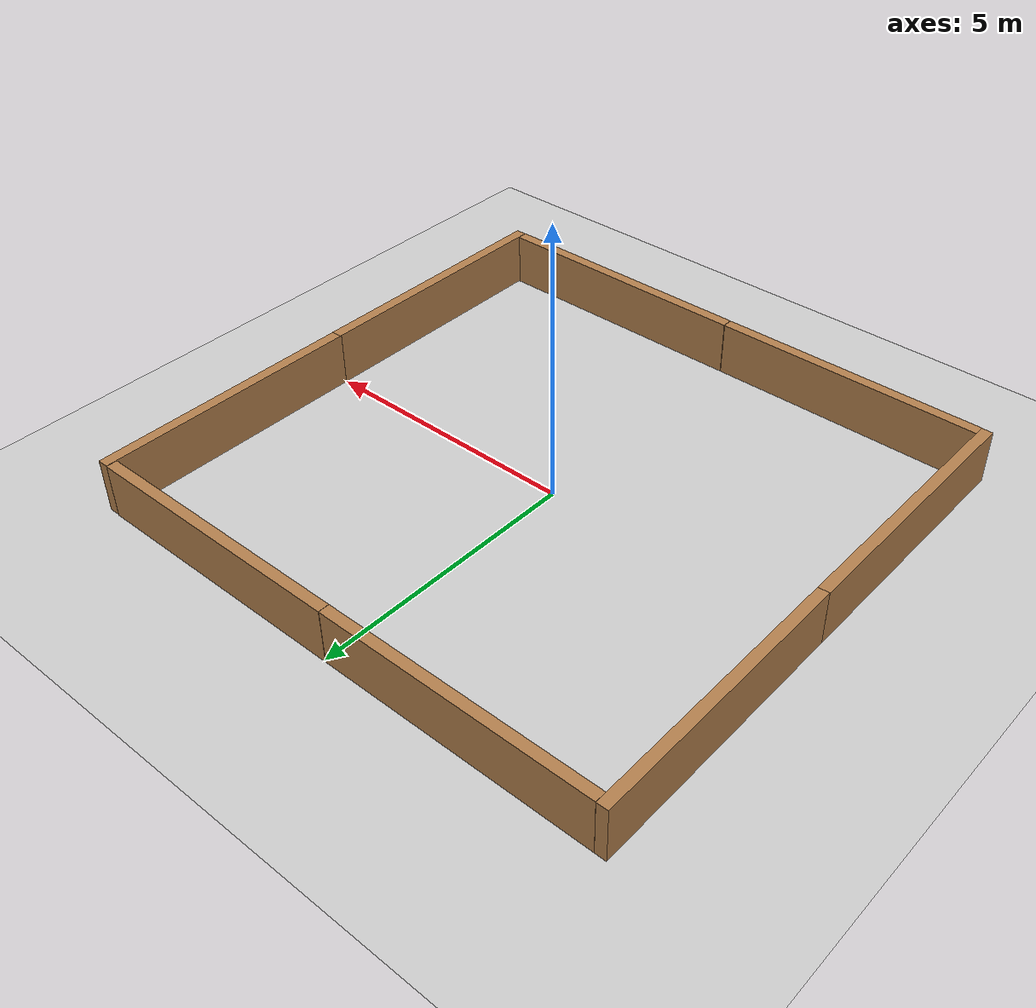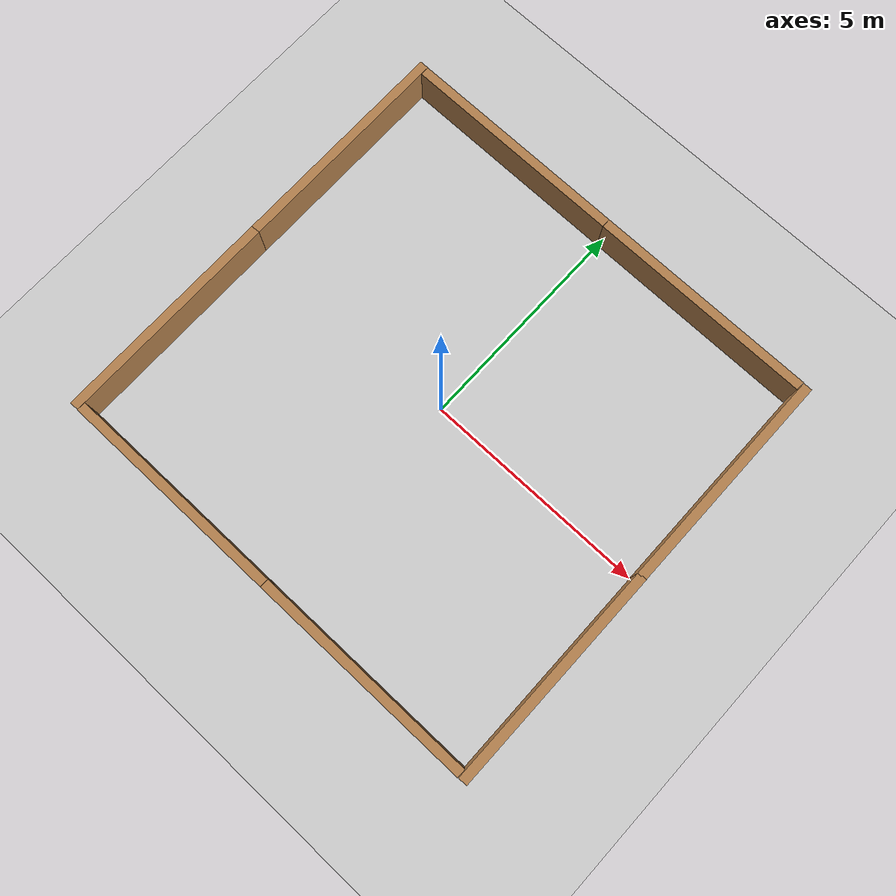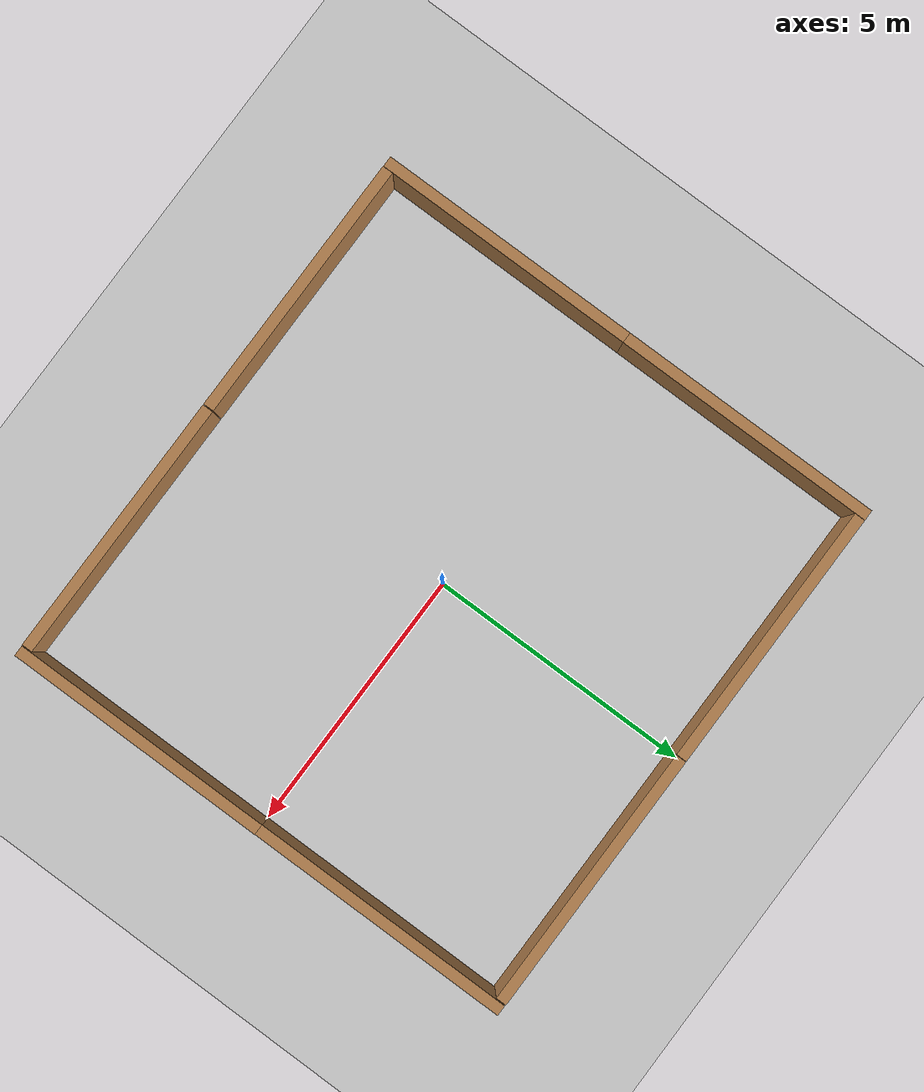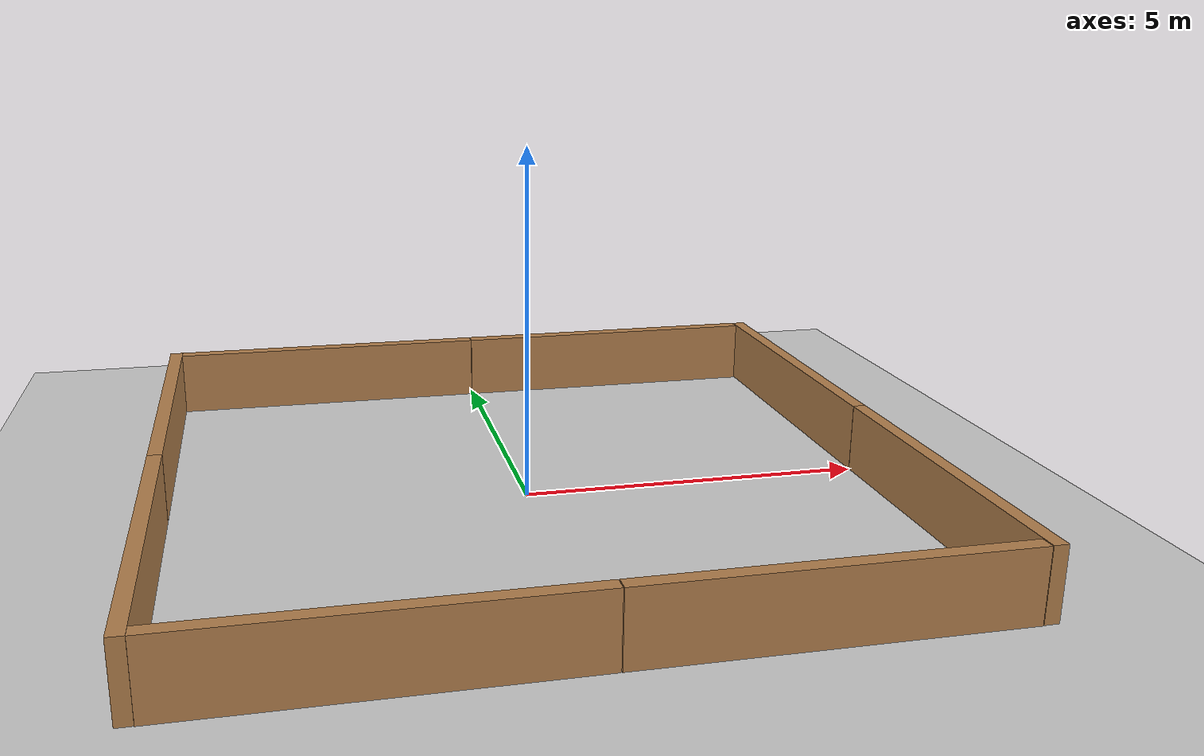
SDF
<sdf version="1.7">
 <world name="default">
  <model name="ground_plane">
   <static>1</static>
   <link name="link">
    <collision name="collision">
     <geometry><plane><normal>0 0 1</normal><size>100 100</size></plane></geometry>
     <surface>
      <contact><collide_bitmask>65535</collide_bitmask></contact>
      <friction><ode><mu>100</mu><mu2>50</mu2></ode></friction>
     </surface>
    </collision>
    <visual name="visual">
     <cast_shadows>0</cast_shadows>
     <geometry><plane><normal>0 0 1</normal><size>100 100</size></plane></geometry>
     <material>
      <script><uri>file://media/materials/scripts/gazebo.material</uri><name>Gazebo/Grey</name></script>
     </material>
    </visual>
   </link>
  </model>
  <light name="sun" type="directional">
   <pose>0 0 10 0 -0 0</pose>
   <diffuse>0.8 0.8 0.8 1</diffuse>
   <specular>0.2 0.2 0.2 1</specular>
   <attenuation>
    <range>1000</range>
    <constant>0.9</constant>
    <linear>0.01</linear>
    <quadratic>0.001</quadratic>
   </attenuation>
   <direction>-0.5 0.1 -0.9</direction>
   <spot><inner_angle>0</inner_angle><outer_angle>0</outer_angle><falloff>0</falloff></spot>
  </light>
  <model name="right_wall">
   <static>1</static>
   <pose>-2.49731 -4.87538 0.5 0 -0 0</pose>
   <link name="link">
    <collision name="collision"><geometry><box><size>5 0.2 1</size></box></geometry></collision>
    <visual name="visual">
     <geometry><box><size>5 0.2 1</size></box></geometry>
     <material>
      <script><uri>file://media/materials/scripts/gazebo.material</uri><name>Gazebo/Wood</name></script>
     </material>
    </visual>
   </link>
  </model>
  <model name="left_wall">
   <static>1</static>
   <pose>-2.52857 4.9199 0.5 0 -0 0</pose>
   <link name="link">
    <collision name="collision"><geometry><box><size>5 0.2 1</size></box></geometry></collision>
    <visual name="visual">
     <geometry><box><size>5 0.2 1</size></box></geometry>
     <material>
      <script><uri>file://media/materials/scripts/gazebo.material</uri><name>Gazebo/Wood</name></script>
     </material>
    </visual>
   </link>
  </model>
  <gravity>0 0 -9.8</gravity>
  <magnetic_field>6e-06 2.3e-05 -4.2e-05</magnetic_field>
  <atmosphere type="adiabatic"/>
  <physics type="ode">
   <max_step_size>0.001</max_step_size>
   <real_time_factor>1</real_time_factor>
   <real_time_update_rate>1000</real_time_update_rate>
  </physics>
  <scene><ambient>0.4 0.4 0.4 1</ambient><background>0.7 0.7 0.7 1</background><shadows>1</shadows></scene>
  <spherical_coordinates>
   <surface_model>EARTH_WGS84</surface_model>
   <latitude_deg>0</latitude_deg>
   <longitude_deg>0</longitude_deg>
   <elevation>0</elevation>
   <heading_deg>0</heading_deg>
  </spherical_coordinates>
  <model name="right_wall_clone">
   <static>1</static>
   <pose>-5.1074 -2.46857 0.5 0 -0 1.57409</pose>
   <link name="link">
    <collision name="collision"><geometry><box><size>5 0.2 1</size></box></geometry></collision>
    <visual name="visual">
     <geometry><box><size>5 0.2 1</size></box></geometry>
     <material>
      <script><uri>file://media/materials/scripts/gazebo.material</uri><name>Gazebo/Wood</name></script>
     </material>
    </visual>
   </link>
  </model>
  <model name="left_wall_clone">
   <static>1</static>
   <pose>2.47735 4.92022 0.5 0 -0 0</pose>
   <link name="link">
    <collision name="collision"><geometry><box><size>5 0.2 1</size></box></geometry></collision>
    <visual name="visual">
     <geometry><box><size>5 0.2 1</size></box></geometry>
     <material>
      <script><uri>file://media/materials/scripts/gazebo.material</uri><name>Gazebo/Wood</name></script>
     </material>
    </visual>
   </link>
  </model>
  <model name="left_wall_clone_clone">
   <static>1</static>
   <pose>2.51422 -4.87522 0.5 0 -0 0</pose>
   <link name="link">
    <collision name="collision"><geometry><box><size>5 0.2 1</size></box></geometry></collision>
    <visual name="visual">
     <geometry><box><size>5 0.2 1</size></box></geometry>
     <material>
      <script><uri>file://media/materials/scripts/gazebo.material</uri><name>Gazebo/Wood</name></script>
     </material>
    </visual>
   </link>
  </model>
  <model name="right_wall_clone_clone">
   <static>1</static>
   <pose>5.10072 2.51065 0.5 0 -0 1.57409</pose>
   <link name="link">
    <collision name="collision"><geometry><box><size>5 0.2 1</size></box></geometry></collision>
    <visual name="visual">
     <geometry><box><size>5 0.2 1</size></box></geometry>
     <material>
      <script><uri>file://media/materials/scripts/gazebo.material</uri><name>Gazebo/Wood</name></script>
     </material>
    </visual>
   </link>
  </model>
  <model name="right_wall_clone_clone_0">
   <static>1</static>
   <pose>-5.12297 2.52007 0.5 0 -0 1.57409</pose>
   <link name="link">
    <collision name="collision"><geometry><box><size>5 0.2 1</size></box></geometry></collision>
    <visual name="visual">
     <geometry><box><size>5 0.2 1</size></box></geometry>
     <material>
      <script><uri>file://media/materials/scripts/gazebo.material</uri><name>Gazebo/Wood</name></script>
     </material>
    </visual>
   </link>
  </model>
  <model name="right_wall_clone_clone_clone">
   <static>1</static>
   <pose>5.12108 -2.46603 0.5 0 -0 1.57409</pose>
   <link name="link">
    <collision name="collision"><geometry><box><size>5 0.2 1</size></box></geometry></collision>
    <visual name="visual">
     <geometry><box><size>5 0.2 1</size></box></geometry>
     <material>
      <script><uri>file://media/materials/scripts/gazebo.material</uri><name>Gazebo/Wood</name></script>
     </material>
    </visual>
   </link>
  </model>
 </world>
</sdf>
